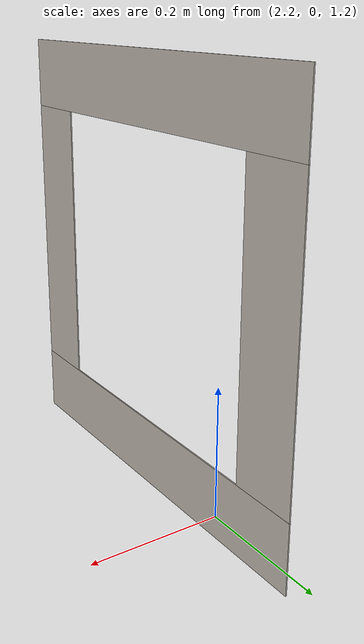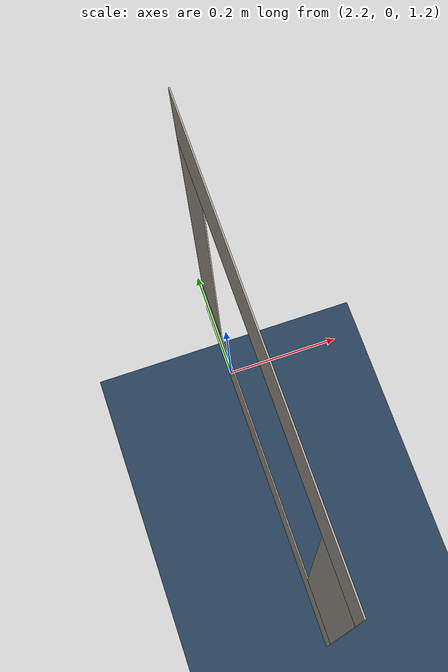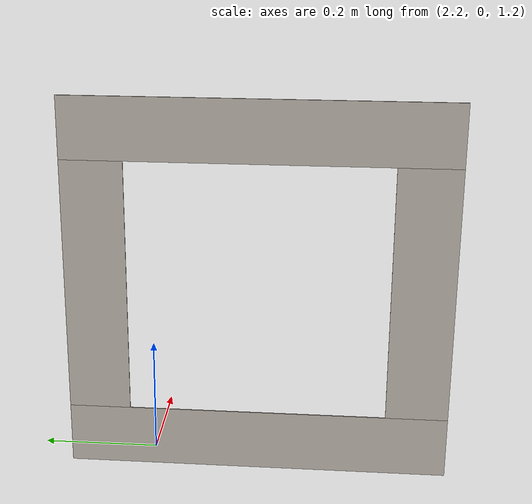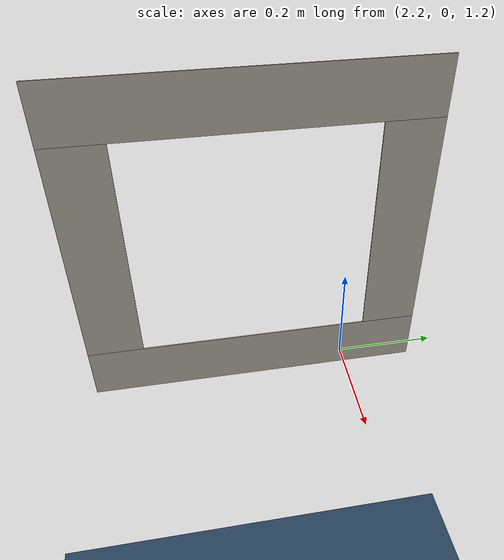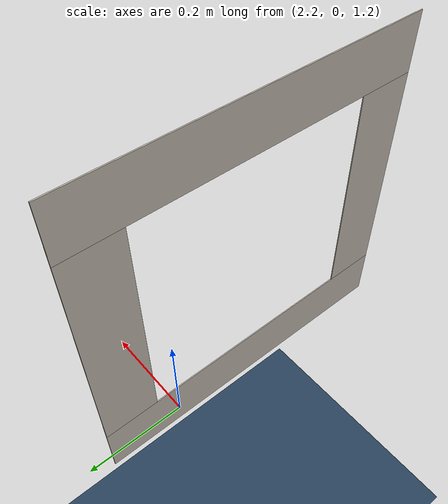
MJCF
<mujoco model="TinyRacer vision gate">
  <option integrator="RK4" density="1.225" viscosity="1.8e-5" timestep="0.001"/>
  <compiler inertiafromgeom="false" autolimits="true"/>
  <statistic center="1 0 1" extent="2.5"/>
  <visual>
    <headlight diffuse="0.6 0.6 0.6" ambient="0.5 0.5 0.5" specular="0 0 0"/>
    <rgba haze="0.15 0.25 0.35 0" fog="1 1 1 0"/>
    <map fogstart="0" fogend="0"/>
    <global azimuth="0" elevation="-20" ellipsoidinertia="true"/>
  </visual>
  <asset>
    <texture type="skybox" builtin="gradient" rgb1="0.3 0.5 0.7" rgb2="0 0 0"
             width="512" height="3072"/>
    <texture type="2d" name="groundplane" builtin="checker" mark="edge"
             rgb1="0.2 0.3 0.4" rgb2="0.1 0.2 0.3" markrgb="0.8 0.8 0.8"
             width="512" height="512"/>
    <material name="groundplane" texture="groundplane" texuniform="true"
              texrepeat="2 2" reflectance="0.2"/>
    <texture type="2d" name="newbeedrone_gate_texture"
             file="textures/newbeedrone_gate_front_rgba_v1.png"/>
    <material name="newbeedrone_gate" texture="newbeedrone_gate_texture"
              texuniform="false" rgba="1 1 1 1" specular="0.08"
              shininess="0.12"/>
    <mesh name="newbeedrone_gate_top"
          file="meshes/newbeedrone_gate_top.obj" scale="1 0.9 0.9"/>
    <mesh name="newbeedrone_gate_bottom"
          file="meshes/newbeedrone_gate_bottom.obj" scale="1 0.9 0.9"/>
    <mesh name="newbeedrone_gate_left"
          file="meshes/newbeedrone_gate_left.obj" scale="1 0.9 0.9"/>
    <mesh name="newbeedrone_gate_right"
          file="meshes/newbeedrone_gate_right.obj" scale="1 0.9 0.9"/>
  </asset>
  <worldbody>
    <light pos="0 0 4" dir="0 0 -1" directional="true"/>
    <camera name="crazyflie_preview" pos="0 0 1.5"
            xyaxes="0 -1 0 0 0 1" fovy="47.168554"/>
    <geom name="floor" size="0 0 0.05" type="plane" material="groundplane"/>
    <!-- Pinned NewBeeDrone contract: 0.45 m opening, 0.108 m rails,
         0.555 m rail-center span, and 0.666 m outer size. -->
    <body name="newbeedrone_gate" pos="2.2 -0.18 1.5">
      <geom type="mesh" mesh="newbeedrone_gate_top"
            material="newbeedrone_gate" contype="0" conaffinity="0"/>
      <geom type="mesh" mesh="newbeedrone_gate_bottom"
            material="newbeedrone_gate" contype="0" conaffinity="0"/>
      <geom type="mesh" mesh="newbeedrone_gate_left"
            material="newbeedrone_gate" contype="0" conaffinity="0"/>
      <geom type="mesh" mesh="newbeedrone_gate_right"
            material="newbeedrone_gate" contype="0" conaffinity="0"/>
      <geom name="gate_left" type="box" pos="0 -0.279 0"
            size="0.025 0.054 0.225" rgba="0 0 0 0"
            contype="1" conaffinity="1"/>
      <geom name="gate_right" type="box" pos="0 0.279 0"
            size="0.025 0.054 0.225" rgba="0 0 0 0"
            contype="1" conaffinity="1"/>
      <geom name="gate_top" type="box" pos="0 0 0.2775"
            size="0.025 0.333 0.054" rgba="0 0 0 0"
            contype="1" conaffinity="1"/>
      <geom name="gate_bottom" type="box" pos="0 0 -0.2775"
            size="0.025 0.333 0.054" rgba="0 0 0 0"
            contype="1" conaffinity="1"/>
    </body>
  </worldbody>
</mujoco>
